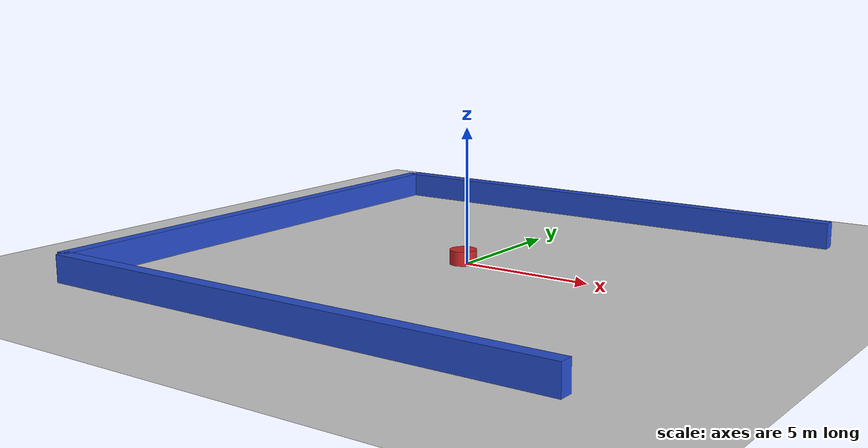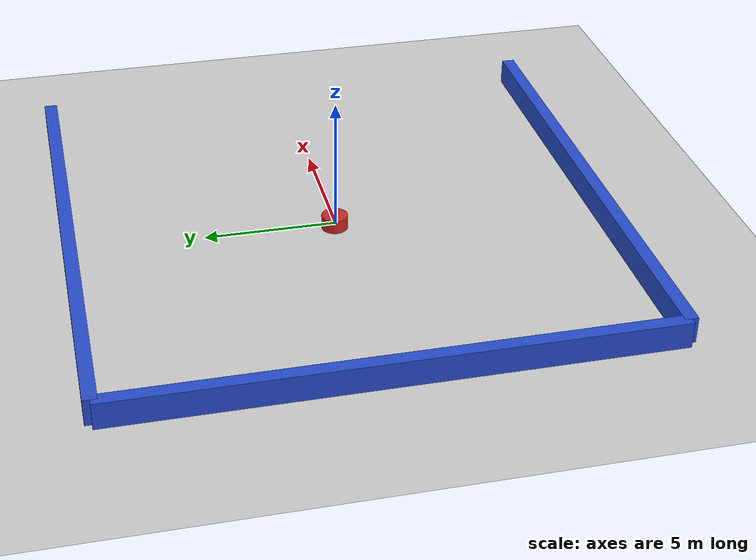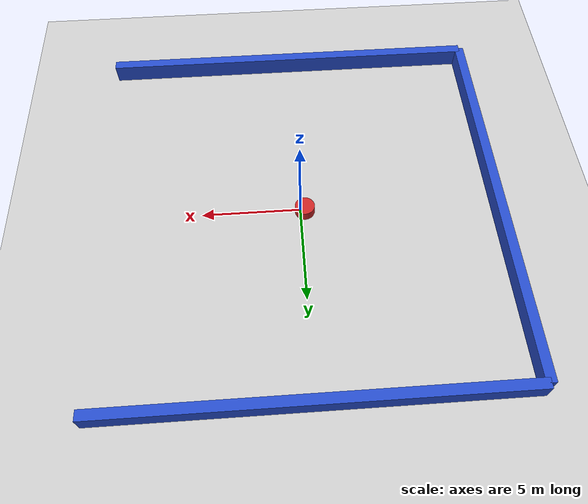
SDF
<?xml version="1.0" ?>
<sdf version="1.6">
   <world name="default">
    <model name="ground_plane">
      <static>1</static>
      <link name="link">
        <collision name="collision">
          <geometry><plane><normal>0 0 1</normal><size>100 100</size></plane></geometry>
          <surface><friction><ode><mu>100</mu><mu2>50</mu2></ode><torsional><ode/></torsional></friction><contact><ode/></contact></surface>
        </collision>
        <visual name="visual">
          <cast_shadows>0</cast_shadows>
          <geometry><plane><normal>0 0 1</normal><size>100 100</size></plane></geometry>
          <material><ambient>0.8 0.8 0.8 1</ambient><diffuse>0.8 0.8 0.8 1</diffuse><specular>0.01 0.01 0.01 1</specular></material>
        </visual>
      </link>
    </model>
    <light name="sun" type="directional">
      <cast_shadows>1</cast_shadows>
      <pose>0 0 10 0 0 0</pose>
      <diffuse>1 1 1 1</diffuse>
      <specular>0.1 0.1 0.1 1</specular>
      <attenuation><range>1000</range><constant>0.9</constant><linear>0.01</linear><quadratic>0.001</quadratic></attenuation>
      <direction>-0.5 0.5 -1</direction>
    </light>

    <model name='hardlibobs_160'>
      <static>1</static>
      <pose frame=''>-0.225000 0.075000 0.000000 0.000000 0.000000 0.000000</pose>
      <link name='link'>
        <inertial>
          <mass>1</mass>
          <inertia>
            <ixx>0.145833</ixx>
            <ixy>0</ixy>
            <ixz>0</ixz>
            <iyy>0.145833</iyy>
            <iyz>0</iyz>
            <izz>0.125</izz>
          </inertia>
        </inertial>
        <collision name='collision'>
           <geometry>
            <cylinder>
                <radius>0.5000</radius>
                 <length> 1 </length>
            </cylinder>
          </geometry>
           <surface>
            <contact>
              <ode/>
            </contact>
            <bounce/>
            <friction>
              <torsional>
                <ode/>
              </torsional>
              <ode/>
            </friction>
          </surface>
        </collision>
        <visual name='visual'>
           <geometry>
            <cylinder>
                <radius>0.5000</radius>
                 <length> 1 </length>
            </cylinder>
          </geometry>
          <material>
            <script>
              <name>Gazebo/Red</name>
              <uri>file://media/materials/scripts/gazebo.material</uri>
            </script>
          </material>
        </visual>
        <self_collide>0</self_collide>
        <kinematic>0</kinematic>
        <gravity>1</gravity>
      </link>
      <plugin name='hardlibobs_160' filename='hardlibobs_160.so'/>
    </model>

    <model name='hardlibobs_197'>
      <static>1</static>
      <pose frame=''>-0.225000 0.075000 0.000000 0.000000 0.000000 0.000000</pose>
      <link name='link'>
        <inertial>
          <mass>1</mass>
          <inertia>
            <ixx>0.145833</ixx>
            <ixy>0</ixy>
            <ixz>0</ixz>
            <iyy>0.145833</iyy>
            <iyz>0</iyz>
            <izz>0.125</izz>
          </inertia>
        </inertial>
        <collision name='collision'>
           <geometry>
            <cylinder>
                <radius>0.5000</radius>
                 <length> 1 </length>
            </cylinder>
          </geometry>
           <surface>
            <contact>
              <ode/>
            </contact>
            <bounce/>
            <friction>
              <torsional>
                <ode/>
              </torsional>
              <ode/>
            </friction>
          </surface>
        </collision>
        <visual name='visual'>
           <geometry>
            <cylinder>
                <radius>0.5000</radius>
                 <length> 1 </length>
            </cylinder>
          </geometry>
          <material>
            <script>
              <name>Gazebo/Red</name>
              <uri>file://media/materials/scripts/gazebo.material</uri>
            </script>
          </material>
        </visual>
        <self_collide>0</self_collide>
        <kinematic>0</kinematic>
        <gravity>1</gravity>
      </link>
      <plugin name='hardlibobs_197' filename='hardlibobs_197.so'/>
    </model>

    <model name='hardlibobs_157'>
      <static>1</static>
      <pose frame=''>-0.225000 0.075000 0.000000 0.000000 0.000000 0.000000</pose>
      <link name='link'>
        <inertial>
          <mass>1</mass>
          <inertia>
            <ixx>0.145833</ixx>
            <ixy>0</ixy>
            <ixz>0</ixz>
            <iyy>0.145833</iyy>
            <iyz>0</iyz>
            <izz>0.125</izz>
          </inertia>
        </inertial>
        <collision name='collision'>
           <geometry>
            <cylinder>
                <radius>0.5000</radius>
                 <length> 1 </length>
            </cylinder>
          </geometry>
           <surface>
            <contact>
              <ode/>
            </contact>
            <bounce/>
            <friction>
              <torsional>
                <ode/>
              </torsional>
              <ode/>
            </friction>
          </surface>
        </collision>
        <visual name='visual'>
           <geometry>
            <cylinder>
                <radius>0.5000</radius>
                 <length> 1 </length>
            </cylinder>
          </geometry>
          <material>
            <script>
              <name>Gazebo/Red</name>
              <uri>file://media/materials/scripts/gazebo.material</uri>
            </script>
          </material>
        </visual>
        <self_collide>0</self_collide>
        <kinematic>0</kinematic>
        <gravity>1</gravity>
      </link>
      <plugin name='hardlibobs_157' filename='hardlibobs_157.so'/>
    </model>

    <model name='hardlibobs_161'>
      <static>1</static>
      <pose frame=''>-0.225000 0.075000 0.000000 0.000000 0.000000 0.000000</pose>
      <link name='link'>
        <inertial>
          <mass>1</mass>
          <inertia>
            <ixx>0.145833</ixx>
            <ixy>0</ixy>
            <ixz>0</ixz>
            <iyy>0.145833</iyy>
            <iyz>0</iyz>
            <izz>0.125</izz>
          </inertia>
        </inertial>
        <collision name='collision'>
           <geometry>
            <cylinder>
                <radius>0.5000</radius>
                 <length> 1 </length>
            </cylinder>
          </geometry>
           <surface>
            <contact>
              <ode/>
            </contact>
            <bounce/>
            <friction>
              <torsional>
                <ode/>
              </torsional>
              <ode/>
            </friction>
          </surface>
        </collision>
        <visual name='visual'>
           <geometry>
            <cylinder>
                <radius>0.5000</radius>
                 <length> 1 </length>
            </cylinder>
          </geometry>
          <material>
            <script>
              <name>Gazebo/Red</name>
              <uri>file://media/materials/scripts/gazebo.material</uri>
            </script>
          </material>
        </visual>
        <self_collide>0</self_collide>
        <kinematic>0</kinematic>
        <gravity>1</gravity>
      </link>
      <plugin name='hardlibobs_161' filename='hardlibobs_161.so'/>
    </model>

    <model name='hardlibobs_162'>
      <static>1</static>
      <pose frame=''>-0.225000 0.075000 0.000000 0.000000 0.000000 0.000000</pose>
      <link name='link'>
        <inertial>
          <mass>1</mass>
          <inertia>
            <ixx>0.145833</ixx>
            <ixy>0</ixy>
            <ixz>0</ixz>
            <iyy>0.145833</iyy>
            <iyz>0</iyz>
            <izz>0.125</izz>
          </inertia>
        </inertial>
        <collision name='collision'>
           <geometry>
            <cylinder>
                <radius>0.5000</radius>
                 <length> 1 </length>
            </cylinder>
          </geometry>
           <surface>
            <contact>
              <ode/>
            </contact>
            <bounce/>
            <friction>
              <torsional>
                <ode/>
              </torsional>
              <ode/>
            </friction>
          </surface>
        </collision>
        <visual name='visual'>
           <geometry>
            <cylinder>
                <radius>0.5000</radius>
                 <length> 1 </length>
            </cylinder>
          </geometry>
          <material>
            <script>
              <name>Gazebo/Red</name>
              <uri>file://media/materials/scripts/gazebo.material</uri>
            </script>
          </material>
        </visual>
        <self_collide>0</self_collide>
        <kinematic>0</kinematic>
        <gravity>1</gravity>
      </link>
      <plugin name='hardlibobs_162' filename='hardlibobs_162.so'/>
    </model>

    <model name='hardlibobs_180'>
      <static>1</static>
      <pose frame=''>-0.225000 0.075000 0.000000 0.000000 0.000000 0.000000</pose>
      <link name='link'>
        <inertial>
          <mass>1</mass>
          <inertia>
            <ixx>0.145833</ixx>
            <ixy>0</ixy>
            <ixz>0</ixz>
            <iyy>0.145833</iyy>
            <iyz>0</iyz>
            <izz>0.125</izz>
          </inertia>
        </inertial>
        <collision name='collision'>
           <geometry>
            <cylinder>
                <radius>0.5000</radius>
                 <length> 1 </length>
            </cylinder>
          </geometry>
           <surface>
            <contact>
              <ode/>
            </contact>
            <bounce/>
            <friction>
              <torsional>
                <ode/>
              </torsional>
              <ode/>
            </friction>
          </surface>
        </collision>
        <visual name='visual'>
           <geometry>
            <cylinder>
                <radius>0.5000</radius>
                 <length> 1 </length>
            </cylinder>
          </geometry>
          <material>
            <script>
              <name>Gazebo/Red</name>
              <uri>file://media/materials/scripts/gazebo.material</uri>
            </script>
          </material>
        </visual>
        <self_collide>0</self_collide>
        <kinematic>0</kinematic>
        <gravity>1</gravity>
      </link>
      <plugin name='hardlibobs_180' filename='hardlibobs_180.so'/>
    </model>

    <model name='hardlibobs_58'>
      <static>1</static>
      <pose frame=''>-0.225000 0.075000 0.000000 0.000000 0.000000 0.000000</pose>
      <link name='link'>
        <inertial>
          <mass>1</mass>
          <inertia>
            <ixx>0.145833</ixx>
            <ixy>0</ixy>
            <ixz>0</ixz>
            <iyy>0.145833</iyy>
            <iyz>0</iyz>
            <izz>0.125</izz>
          </inertia>
        </inertial>
        <collision name='collision'>
           <geometry>
            <cylinder>
                <radius>0.5000</radius>
                 <length> 1 </length>
            </cylinder>
          </geometry>
           <surface>
            <contact>
              <ode/>
            </contact>
            <bounce/>
            <friction>
              <torsional>
                <ode/>
              </torsional>
              <ode/>
            </friction>
          </surface>
        </collision>
        <visual name='visual'>
           <geometry>
            <cylinder>
                <radius>0.5000</radius>
                 <length> 1 </length>
            </cylinder>
          </geometry>
          <material>
            <script>
              <name>Gazebo/Red</name>
              <uri>file://media/materials/scripts/gazebo.material</uri>
            </script>
          </material>
        </visual>
        <self_collide>0</self_collide>
        <kinematic>0</kinematic>
        <gravity>1</gravity>
      </link>
      <plugin name='hardlibobs_58' filename='hardlibobs_58.so'/>
    </model>

    <model name='hardlibobs_123'>
      <static>1</static>
      <pose frame=''>-0.225000 0.075000 0.000000 0.000000 0.000000 0.000000</pose>
      <link name='link'>
        <inertial>
          <mass>1</mass>
          <inertia>
            <ixx>0.145833</ixx>
            <ixy>0</ixy>
            <ixz>0</ixz>
            <iyy>0.145833</iyy>
            <iyz>0</iyz>
            <izz>0.125</izz>
          </inertia>
        </inertial>
        <collision name='collision'>
           <geometry>
            <cylinder>
                <radius>0.5000</radius>
                 <length> 1 </length>
            </cylinder>
          </geometry>
           <surface>
            <contact>
              <ode/>
            </contact>
            <bounce/>
            <friction>
              <torsional>
                <ode/>
              </torsional>
              <ode/>
            </friction>
          </surface>
        </collision>
        <visual name='visual'>
           <geometry>
            <cylinder>
                <radius>0.5000</radius>
                 <length> 1 </length>
            </cylinder>
          </geometry>
          <material>
            <script>
              <name>Gazebo/Red</name>
              <uri>file://media/materials/scripts/gazebo.material</uri>
            </script>
          </material>
        </visual>
        <self_collide>0</self_collide>
        <kinematic>0</kinematic>
        <gravity>1</gravity>
      </link>
      <plugin name='hardlibobs_123' filename='hardlibobs_123.so'/>
    </model>

    <model name='hardlibobs_35'>
      <static>1</static>
      <pose frame=''>-0.225000 0.075000 0.000000 0.000000 0.000000 0.000000</pose>
      <link name='link'>
        <inertial>
          <mass>1</mass>
          <inertia>
            <ixx>0.145833</ixx>
            <ixy>0</ixy>
            <ixz>0</ixz>
            <iyy>0.145833</iyy>
            <iyz>0</iyz>
            <izz>0.125</izz>
          </inertia>
        </inertial>
        <collision name='collision'>
           <geometry>
            <cylinder>
                <radius>0.5000</radius>
                 <length> 1 </length>
            </cylinder>
          </geometry>
           <surface>
            <contact>
              <ode/>
            </contact>
            <bounce/>
            <friction>
              <torsional>
                <ode/>
              </torsional>
              <ode/>
            </friction>
          </surface>
        </collision>
        <visual name='visual'>
           <geometry>
            <cylinder>
                <radius>0.5000</radius>
                 <length> 1 </length>
            </cylinder>
          </geometry>
          <material>
            <script>
              <name>Gazebo/Red</name>
              <uri>file://media/materials/scripts/gazebo.material</uri>
            </script>
          </material>
        </visual>
        <self_collide>0</self_collide>
        <kinematic>0</kinematic>
        <gravity>1</gravity>
      </link>
      <plugin name='hardlibobs_35' filename='hardlibobs_35.so'/>
    </model>

    <model name='hardlibobs_165'>
      <static>1</static>
      <pose frame=''>-0.225000 0.075000 0.000000 0.000000 0.000000 0.000000</pose>
      <link name='link'>
        <inertial>
          <mass>1</mass>
          <inertia>
            <ixx>0.145833</ixx>
            <ixy>0</ixy>
            <ixz>0</ixz>
            <iyy>0.145833</iyy>
            <iyz>0</iyz>
            <izz>0.125</izz>
          </inertia>
        </inertial>
        <collision name='collision'>
           <geometry>
            <cylinder>
                <radius>0.5000</radius>
                 <length> 1 </length>
            </cylinder>
          </geometry>
           <surface>
            <contact>
              <ode/>
            </contact>
            <bounce/>
            <friction>
              <torsional>
                <ode/>
              </torsional>
              <ode/>
            </friction>
          </surface>
        </collision>
        <visual name='visual'>
           <geometry>
            <cylinder>
                <radius>0.5000</radius>
                 <length> 1 </length>
            </cylinder>
          </geometry>
          <material>
            <script>
              <name>Gazebo/Red</name>
              <uri>file://media/materials/scripts/gazebo.material</uri>
            </script>
          </material>
        </visual>
        <self_collide>0</self_collide>
        <kinematic>0</kinematic>
        <gravity>1</gravity>
      </link>
      <plugin name='hardlibobs_165' filename='hardlibobs_165.so'/>
    </model>

    <model name='hardlibobs_172'>
      <static>1</static>
      <pose frame=''>-0.225000 0.075000 0.000000 0.000000 0.000000 0.000000</pose>
      <link name='link'>
        <inertial>
          <mass>1</mass>
          <inertia>
            <ixx>0.145833</ixx>
            <ixy>0</ixy>
            <ixz>0</ixz>
            <iyy>0.145833</iyy>
            <iyz>0</iyz>
            <izz>0.125</izz>
          </inertia>
        </inertial>
        <collision name='collision'>
           <geometry>
            <cylinder>
                <radius>0.5000</radius>
                 <length> 1 </length>
            </cylinder>
          </geometry>
           <surface>
            <contact>
              <ode/>
            </contact>
            <bounce/>
            <friction>
              <torsional>
                <ode/>
              </torsional>
              <ode/>
            </friction>
          </surface>
        </collision>
        <visual name='visual'>
           <geometry>
            <cylinder>
                <radius>0.5000</radius>
                 <length> 1 </length>
            </cylinder>
          </geometry>
          <material>
            <script>
              <name>Gazebo/Red</name>
              <uri>file://media/materials/scripts/gazebo.material</uri>
            </script>
          </material>
        </visual>
        <self_collide>0</self_collide>
        <kinematic>0</kinematic>
        <gravity>1</gravity>
      </link>
      <plugin name='hardlibobs_172' filename='hardlibobs_172.so'/>
    </model>

    <model name='hardlibobs_181'>
      <static>1</static>
      <pose frame=''>-0.225000 0.075000 0.000000 0.000000 0.000000 0.000000</pose>
      <link name='link'>
        <inertial>
          <mass>1</mass>
          <inertia>
            <ixx>0.145833</ixx>
            <ixy>0</ixy>
            <ixz>0</ixz>
            <iyy>0.145833</iyy>
            <iyz>0</iyz>
            <izz>0.125</izz>
          </inertia>
        </inertial>
        <collision name='collision'>
           <geometry>
            <cylinder>
                <radius>0.5000</radius>
                 <length> 1 </length>
            </cylinder>
          </geometry>
           <surface>
            <contact>
              <ode/>
            </contact>
            <bounce/>
            <friction>
              <torsional>
                <ode/>
              </torsional>
              <ode/>
            </friction>
          </surface>
        </collision>
        <visual name='visual'>
           <geometry>
            <cylinder>
                <radius>0.5000</radius>
                 <length> 1 </length>
            </cylinder>
          </geometry>
          <material>
            <script>
              <name>Gazebo/Red</name>
              <uri>file://media/materials/scripts/gazebo.material</uri>
            </script>
          </material>
        </visual>
        <self_collide>0</self_collide>
        <kinematic>0</kinematic>
        <gravity>1</gravity>
      </link>
      <plugin name='hardlibobs_181' filename='hardlibobs_181.so'/>
    </model>

    <model name='hardlibobs_38'>
      <static>1</static>
      <pose frame=''>-0.225000 0.075000 0.000000 0.000000 0.000000 0.000000</pose>
      <link name='link'>
        <inertial>
          <mass>1</mass>
          <inertia>
            <ixx>0.145833</ixx>
            <ixy>0</ixy>
            <ixz>0</ixz>
            <iyy>0.145833</iyy>
            <iyz>0</iyz>
            <izz>0.125</izz>
          </inertia>
        </inertial>
        <collision name='collision'>
           <geometry>
            <cylinder>
                <radius>0.5000</radius>
                 <length> 1 </length>
            </cylinder>
          </geometry>
           <surface>
            <contact>
              <ode/>
            </contact>
            <bounce/>
            <friction>
              <torsional>
                <ode/>
              </torsional>
              <ode/>
            </friction>
          </surface>
        </collision>
        <visual name='visual'>
           <geometry>
            <cylinder>
                <radius>0.5000</radius>
                 <length> 1 </length>
            </cylinder>
          </geometry>
          <material>
            <script>
              <name>Gazebo/Red</name>
              <uri>file://media/materials/scripts/gazebo.material</uri>
            </script>
          </material>
        </visual>
        <self_collide>0</self_collide>
        <kinematic>0</kinematic>
        <gravity>1</gravity>
      </link>
      <plugin name='hardlibobs_38' filename='hardlibobs_38.so'/>
    </model>

    <model name='hardlibobs_159'>
      <static>1</static>
      <pose frame=''>-0.225000 0.075000 0.000000 0.000000 0.000000 0.000000</pose>
      <link name='link'>
        <inertial>
          <mass>1</mass>
          <inertia>
            <ixx>0.145833</ixx>
            <ixy>0</ixy>
            <ixz>0</ixz>
            <iyy>0.145833</iyy>
            <iyz>0</iyz>
            <izz>0.125</izz>
          </inertia>
        </inertial>
        <collision name='collision'>
           <geometry>
            <cylinder>
                <radius>0.5000</radius>
                 <length> 1 </length>
            </cylinder>
          </geometry>
           <surface>
            <contact>
              <ode/>
            </contact>
            <bounce/>
            <friction>
              <torsional>
                <ode/>
              </torsional>
              <ode/>
            </friction>
          </surface>
        </collision>
        <visual name='visual'>
           <geometry>
            <cylinder>
                <radius>0.5000</radius>
                 <length> 1 </length>
            </cylinder>
          </geometry>
          <material>
            <script>
              <name>Gazebo/Red</name>
              <uri>file://media/materials/scripts/gazebo.material</uri>
            </script>
          </material>
        </visual>
        <self_collide>0</self_collide>
        <kinematic>0</kinematic>
        <gravity>1</gravity>
      </link>
      <plugin name='hardlibobs_159' filename='hardlibobs_159.so'/>
    </model>

    <model name='hardlibobs_90'>
      <static>1</static>
      <pose frame=''>-0.225000 0.075000 0.000000 0.000000 0.000000 0.000000</pose>
      <link name='link'>
        <inertial>
          <mass>1</mass>
          <inertia>
            <ixx>0.145833</ixx>
            <ixy>0</ixy>
            <ixz>0</ixz>
            <iyy>0.145833</iyy>
            <iyz>0</iyz>
            <izz>0.125</izz>
          </inertia>
        </inertial>
        <collision name='collision'>
           <geometry>
            <cylinder>
                <radius>0.5000</radius>
                 <length> 1 </length>
            </cylinder>
          </geometry>
           <surface>
            <contact>
              <ode/>
            </contact>
            <bounce/>
            <friction>
              <torsional>
                <ode/>
              </torsional>
              <ode/>
            </friction>
          </surface>
        </collision>
        <visual name='visual'>
           <geometry>
            <cylinder>
                <radius>0.5000</radius>
                 <length> 1 </length>
            </cylinder>
          </geometry>
          <material>
            <script>
              <name>Gazebo/Red</name>
              <uri>file://media/materials/scripts/gazebo.material</uri>
            </script>
          </material>
        </visual>
        <self_collide>0</self_collide>
        <kinematic>0</kinematic>
        <gravity>1</gravity>
      </link>
      <plugin name='hardlibobs_90' filename='hardlibobs_90.so'/>
    </model>

    <model name='hardlibobs_27'>
      <static>1</static>
      <pose frame=''>-0.225000 0.075000 0.000000 0.000000 0.000000 0.000000</pose>
      <link name='link'>
        <inertial>
          <mass>1</mass>
          <inertia>
            <ixx>0.145833</ixx>
            <ixy>0</ixy>
            <ixz>0</ixz>
            <iyy>0.145833</iyy>
            <iyz>0</iyz>
            <izz>0.125</izz>
          </inertia>
        </inertial>
        <collision name='collision'>
           <geometry>
            <cylinder>
                <radius>0.5000</radius>
                 <length> 1 </length>
            </cylinder>
          </geometry>
           <surface>
            <contact>
              <ode/>
            </contact>
            <bounce/>
            <friction>
              <torsional>
                <ode/>
              </torsional>
              <ode/>
            </friction>
          </surface>
        </collision>
        <visual name='visual'>
           <geometry>
            <cylinder>
                <radius>0.5000</radius>
                 <length> 1 </length>
            </cylinder>
          </geometry>
          <material>
            <script>
              <name>Gazebo/Red</name>
              <uri>file://media/materials/scripts/gazebo.material</uri>
            </script>
          </material>
        </visual>
        <self_collide>0</self_collide>
        <kinematic>0</kinematic>
        <gravity>1</gravity>
      </link>
      <plugin name='hardlibobs_27' filename='hardlibobs_27.so'/>
    </model>

      <model name="back_wall">
      <static>1</static>\   <pose>-10 0 .5 0 0 0</pose>        <link name="box_link">

	<collision name='collision'>
            <geometry>
              <box>
                <size>.5 20 1</size>
              </box>
            </geometry>
           <surface>
            <contact>
              <ode/>
            </contact>
            <bounce/>
            <friction>
              <torsional>
                <ode/>
              </torsional>
              <ode/>
            </friction>
          </surface>
        </collision>

          <visual name="visual">
            <geometry>
              <box>
                <size>.5 20 1</size>
              </box>
            </geometry>
          <material>
                 <script>
                     <name>Gazebo/Blue</name>
                         <uri>file://media/materials/scripts/gazebo.material</uri>
                         </script>
                     </material>
          </visual>
        </link>
      </model>
      <model name="top_wall">
      <static>1</static>
       <pose>0 10 .5 0 0 0</pose>        <link name="box_link">

	<collision name='collision'>
           <geometry>
              <box>
                <size>20 .5 1</size>
              </box>
            </geometry>
           <surface>
            <contact>
              <ode/>
            </contact>
            <bounce/>
            <friction>
              <torsional>
                <ode/>
              </torsional>
              <ode/>
            </friction>
          </surface>
        </collision>
          <visual name="visual">
            <geometry>
              <box>
                <size>20 .5 1</size>
              </box>
            </geometry>
          <material>
                 <script>
                     <name>Gazebo/Blue</name>
                         <uri>file://media/materials/scripts/gazebo.material</uri>
                         </script>
                     </material>
          </visual>
        </link>
      </model>
      <model name="bottom_wall">
      <static>1</static>
       <pose>0 -10 .5 0 0 0</pose>        <link name="box_link">
	<collision name='collision'>
            <geometry>
              <box>
                <size>20 .5 1</size>
              </box>
            </geometry>
           <surface>
            <contact>
              <ode/>
            </contact>
            <bounce/>
            <friction>
              <torsional>
                <ode/>
              </torsional>
              <ode/>
            </friction>
          </surface>
        </collision>
          <visual name="visual">
            <geometry>
              <box>
                <size>20 .5 1</size>
              </box>
            </geometry>
          <material>
                 <script>
                     <name>Gazebo/Blue</name>
                         <uri>file://media/materials/scripts/gazebo.material</uri>
                         </script>
                     </material>
          </visual>
        </link>
      </model>
   </world>
</sdf>
